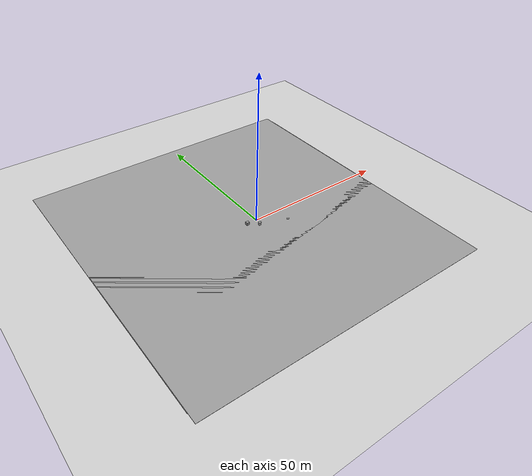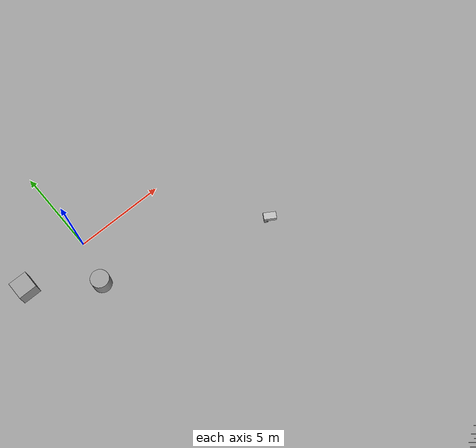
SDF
<sdf version="1.6">
 <world name="default">
  <light name="sun" type="directional">
   <pose>0 0 10 0 -0 0</pose>
   <diffuse>0.8 0.8 0.8 1</diffuse>
   <specular>0.2 0.2 0.2 1</specular>
   <attenuation>
    <range>1000</range>
    <constant>0.9</constant>
    <linear>0.01</linear>
    <quadratic>0.001</quadratic>
   </attenuation>
   <direction>-0.5 0.1 -0.9</direction>
  </light>
  <model name="ground_plane">
   <static>1</static>
   <link name="link">
    <collision name="collision">
     <geometry><plane><normal>0 0 1</normal><size>100 100</size></plane></geometry>
     <surface>
      <contact><collide_bitmask>65535</collide_bitmask></contact>
      <friction><ode><mu>100</mu><mu2>50</mu2></ode></friction>
     </surface>
    </collision>
    <visual name="visual">
     <cast_shadows>0</cast_shadows>
     <geometry><plane><normal>0 0 1</normal><size>100 100</size></plane></geometry>
     <material>
      <script><uri>file://media/materials/scripts/gazebo.material</uri><name>Gazebo/Grey</name></script>
     </material>
    </visual>
   </link>
  </model>
  <gravity>0 0 -9.8</gravity>
  <magnetic_field>6e-06 2.3e-05 -4.2e-05</magnetic_field>
  <atmosphere type="adiabatic"/>
  <physics name="default_physics" default="0" type="ode">
   <max_step_size>0.001</max_step_size>
   <real_time_factor>1</real_time_factor>
   <real_time_update_rate>1000</real_time_update_rate>
  </physics>
  <scene><ambient>0.4 0.4 0.4 1</ambient><background>0.7 0.7 0.7 1</background><shadows>1</shadows></scene>
  <audio><device>default</device></audio>
  <spherical_coordinates>
   <surface_model>EARTH_WGS84</surface_model>
   <latitude_deg>0</latitude_deg>
   <longitude_deg>0</longitude_deg>
   <elevation>0</elevation>
   <heading_deg>0</heading_deg>
  </spherical_coordinates>
  <model name="robot">
   <link name="main_body">
    <inertial>
     <mass>13</mass>
     <inertia><ixx>1</ixx><ixy>0</ixy><ixz>0</ixz><iyy>1</iyy><iyz>0</iyz><izz>1</izz></inertia>
    </inertial>
    <collision name="main_body_collision"><geometry><box><size>0.7 0.4 0.25</size></box></geometry></collision>
    <visual name="main_body_visual"><geometry><box><size>0.7 0.4 0.25</size></box></geometry></visual>
   </link>
   <link name="left_front_support">
    <pose>0.3 -0.15 -0.125 0 -0 0</pose>
    <inertial>
     <mass>0.2</mass>
     <inertia><ixx>1</ixx><ixy>0</ixy><ixz>0</ixz><iyy>1</iyy><iyz>0</iyz><izz>1</izz></inertia>
    </inertial>
    <collision name="left_front_support_collision">
     <pose>0 0.025 -0.04 0 -0 0</pose>
     <geometry><box><size>0.05 0.01 0.08</size></box></geometry>
    </collision>
    <visual name="left_front_support_visual">
     <pose>0 0.025 -0.04 0 -0 0</pose>
     <geometry><box><size>0.05 0.01 0.08</size></box></geometry>
    </visual>
   </link>
   <joint name="left_front_base_joint" type="revolute">
    <child>left_front_support</child>
    <parent>main_body</parent>
    <axis>
     <xyz>0 0 1</xyz>
     <limit><lower>-1e+16</lower><upper>1e+16</upper></limit>
     <dynamics><spring_reference>0</spring_reference><spring_stiffness>0</spring_stiffness></dynamics>
     <use_parent_model_frame>1</use_parent_model_frame>
    </axis>
   </joint>
   <link name="left_aux_wheel">
    <pose>0.27 -0.15 -0.185 0 -0 0</pose>
    <inertial>
     <mass>1</mass>
     <inertia><ixx>1</ixx><ixy>0</ixy><ixz>0</ixz><iyy>1</iyy><iyz>0</iyz><izz>1</izz></inertia>
    </inertial>
    <collision name="left_aux_wheel_collision">
     <pose>0 0 0 1.5708 -0 0</pose>
     <geometry><cylinder><length>0.03</length><radius>0.05</radius></cylinder></geometry>
     <surface>
      <contact><ode><kp>1e+07</kp><kd>1</kd></ode></contact>
      <friction><ode><mu>200</mu><mu2>100</mu2></ode></friction>
     </surface>
    </collision>
    <visual name="left_aux_wheel_visual">
     <pose>0 0 0 1.5708 -0 0</pose>
     <geometry><cylinder><length>0.03</length><radius>0.05</radius></cylinder></geometry>
     <material>
      <script><name>Gazebo/Grey</name><uri>file://media/materials/scripts/gazebo.material</uri></script>
     </material>
    </visual>
   </link>
   <joint name="left_aux_wheel_joint" type="revolute">
    <child>left_aux_wheel</child>
    <parent>left_front_support</parent>
    <axis>
     <xyz>0 1 0</xyz>
     <limit><lower>-1e+16</lower><upper>1e+16</upper></limit>
     <dynamics><spring_reference>0</spring_reference><spring_stiffness>0</spring_stiffness></dynamics>
     <use_parent_model_frame>1</use_parent_model_frame>
    </axis>
   </joint>
   <link name="left_traction_wheel">
    <pose>-0.233333 -0.21 -0.125 0 -0 0</pose>
    <inertial>
     <mass>1</mass>
     <inertia><ixx>1</ixx><ixy>0</ixy><ixz>0</ixz><iyy>1</iyy><iyz>0</iyz><izz>1</izz></inertia>
    </inertial>
    <collision name="left_traction_wheel_collision">
     <pose>0 -0.025 0 1.5708 -0 0</pose>
     <geometry><cylinder><length>0.05</length><radius>0.11</radius></cylinder></geometry>
     <surface>
      <contact><ode><kp>1e+07</kp><kd>1</kd></ode></contact>
      <friction><ode><mu>200</mu><mu2>100</mu2></ode></friction>
     </surface>
    </collision>
    <visual name="left_traction_wheel_visual">
     <pose>0 -0.025 0 1.5708 -0 0</pose>
     <geometry><cylinder><length>0.05</length><radius>0.11</radius></cylinder></geometry>
     <material>
      <script><name>Gazebo/Grey</name><uri>file://media/materials/scripts/gazebo.material</uri></script>
     </material>
    </visual>
   </link>
   <joint name="left_traction_wheel_joint" type="revolute">
    <child>left_traction_wheel</child>
    <parent>main_body</parent>
    <axis>
     <xyz>0 1 0</xyz>
     <limit><lower>-1e+16</lower><upper>1e+16</upper></limit>
     <dynamics><spring_reference>0</spring_reference><spring_stiffness>0</spring_stiffness></dynamics>
     <use_parent_model_frame>1</use_parent_model_frame>
    </axis>
   </joint>
   <link name="right_front_support">
    <pose>0.3 0.15 -0.125 0 -0 0</pose>
    <inertial>
     <mass>0.2</mass>
     <inertia><ixx>1</ixx><ixy>0</ixy><ixz>0</ixz><iyy>1</iyy><iyz>0</iyz><izz>1</izz></inertia>
    </inertial>
    <collision name="right_front_support_collision">
     <pose>0 -0.025 -0.04 0 -0 0</pose>
     <geometry><box><size>0.05 0.01 0.08</size></box></geometry>
    </collision>
    <visual name="right_front_support_visual">
     <pose>0 -0.025 -0.04 0 -0 0</pose>
     <geometry><box><size>0.05 0.01 0.08</size></box></geometry>
    </visual>
   </link>
   <joint name="right_front_base_joint" type="revolute">
    <child>right_front_support</child>
    <parent>main_body</parent>
    <axis>
     <xyz>0 0 1</xyz>
     <limit><lower>-1e+16</lower><upper>1e+16</upper></limit>
     <dynamics><spring_reference>0</spring_reference><spring_stiffness>0</spring_stiffness></dynamics>
     <use_parent_model_frame>1</use_parent_model_frame>
    </axis>
   </joint>
   <link name="right_aux_wheel">
    <pose>0.27 0.15 -0.185 0 -0 0</pose>
    <inertial>
     <mass>1</mass>
     <inertia><ixx>1</ixx><ixy>0</ixy><ixz>0</ixz><iyy>1</iyy><iyz>0</iyz><izz>1</izz></inertia>
    </inertial>
    <collision name="right_aux_wheel_collision">
     <pose>0 0 0 1.5708 -0 0</pose>
     <geometry><cylinder><length>0.03</length><radius>0.05</radius></cylinder></geometry>
     <surface>
      <contact><ode><kp>1e+07</kp><kd>1</kd></ode></contact>
      <friction><ode><mu>200</mu><mu2>100</mu2></ode></friction>
     </surface>
    </collision>
    <visual name="right_aux_wheel_visual">
     <pose>0 0 0 1.5708 -0 0</pose>
     <geometry><cylinder><length>0.03</length><radius>0.05</radius></cylinder></geometry>
     <material>
      <script><name>Gazebo/Grey</name><uri>file://media/materials/scripts/gazebo.material</uri></script>
     </material>
    </visual>
   </link>
   <joint name="right_aux_wheel_joint" type="revolute">
    <child>right_aux_wheel</child>
    <parent>right_front_support</parent>
    <axis>
     <xyz>0 1 0</xyz>
     <limit><lower>-1e+16</lower><upper>1e+16</upper></limit>
     <dynamics><spring_reference>0</spring_reference><spring_stiffness>0</spring_stiffness></dynamics>
     <use_parent_model_frame>1</use_parent_model_frame>
    </axis>
   </joint>
   <link name="right_traction_wheel">
    <pose>-0.233333 0.21 -0.125 0 -0 0</pose>
    <inertial>
     <mass>1</mass>
     <inertia><ixx>1</ixx><ixy>0</ixy><ixz>0</ixz><iyy>1</iyy><iyz>0</iyz><izz>1</izz></inertia>
    </inertial>
    <collision name="right_traction_wheel_collision">
     <pose>0 0.025 0 1.5708 -0 0</pose>
     <geometry><cylinder><length>0.05</length><radius>0.11</radius></cylinder></geometry>
     <surface>
      <contact><ode><kp>1e+07</kp><kd>1</kd></ode></contact>
      <friction><ode><mu>200</mu><mu2>100</mu2></ode></friction>
     </surface>
    </collision>
    <visual name="right_traction_wheel_visual">
     <pose>0 0.025 0 1.5708 -0 0</pose>
     <geometry><cylinder><length>0.05</length><radius>0.11</radius></cylinder></geometry>
     <material>
      <script><name>Gazebo/Grey</name><uri>file://media/materials/scripts/gazebo.material</uri></script>
     </material>
    </visual>
   </link>
   <joint name="right_traction_wheel_joint" type="revolute">
    <child>right_traction_wheel</child>
    <parent>main_body</parent>
    <axis>
     <xyz>0 1 0</xyz>
     <limit><lower>-1e+16</lower><upper>1e+16</upper></limit>
     <dynamics><spring_reference>0</spring_reference><spring_stiffness>0</spring_stiffness></dynamics>
     <use_parent_model_frame>1</use_parent_model_frame>
    </axis>
   </joint>
   <static>0</static>
   <plugin name="gazebo_ros_control" filename="libgazebo_ros_control.so">
    <robotNamespace>/</robotNamespace>
   </plugin>
   <pose>8.59471 -5.44041 0.234999 -1e-06 7e-06 -0.579653</pose>
  </model>
  <model name="ground_plane_0">
   <static>1</static>
   <link name="link">
    <collision name="collision">
     <geometry><plane><normal>0 0 1</normal><size>100 100</size></plane></geometry>
     <surface>
      <contact><collide_bitmask>65535</collide_bitmask></contact>
      <friction><ode><mu>100</mu><mu2>50</mu2></ode></friction>
     </surface>
    </collision>
    <visual name="visual">
     <cast_shadows>0</cast_shadows>
     <geometry><plane><normal>0 0 1</normal><size>100 100</size></plane></geometry>
     <material>
      <script><uri>file://media/materials/scripts/gazebo.material</uri><name>Gazebo/Grey</name></script>
     </material>
    </visual>
   </link>
   <pose>-4.53723 -0.413869 0 0 -0 0</pose>
  </model>
  <model name="unit_box">
   <pose>-3.69784 -0.164179 0.500002 -4e-06 0 0</pose>
   <link name="link">
    <inertial>
     <mass>1</mass>
     <inertia>
      <ixx>0.166667</ixx>
      <ixy>0</ixy>
      <ixz>0</ixz>
      <iyy>0.166667</iyy>
      <iyz>0</iyz>
      <izz>0.166667</izz>
     </inertia>
    </inertial>
    <collision name="collision"><geometry><box><size>1 1 1</size></box></geometry></collision>
    <visual name="visual">
     <geometry><box><size>1 1 1</size></box></geometry>
     <material>
      <script><name>Gazebo/Grey</name><uri>file://media/materials/scripts/gazebo.material</uri></script>
     </material>
    </visual>
   </link>
  </model>
  <model name="unit_cylinder">
   <pose>-0.519855 -2.47141 0.499997 -4e-06 -2e-06 -0</pose>
   <link name="link">
    <inertial>
     <mass>1</mass>
     <inertia><ixx>0.145833</ixx><ixy>0</ixy><ixz>0</ixz><iyy>0.145833</iyy><iyz>0</iyz><izz>0.125</izz></inertia>
    </inertial>
    <collision name="collision">
     <geometry><cylinder><radius>0.5</radius><length>1</length></cylinder></geometry>
    </collision>
    <visual name="visual">
     <geometry><cylinder><radius>0.5</radius><length>1</length></cylinder></geometry>
     <material>
      <script><name>Gazebo/Grey</name><uri>file://media/materials/scripts/gazebo.material</uri></script>
     </material>
    </visual>
   </link>
  </model>
  <model name="ground_plane_1">
   <static>1</static>
   <link name="link">
    <collision name="collision">
     <geometry><plane><normal>0 0 1</normal><size>100 100</size></plane></geometry>
     <surface>
      <contact><collide_bitmask>65535</collide_bitmask></contact>
      <friction><ode><mu>100</mu><mu2>50</mu2></ode></friction>
     </surface>
    </collision>
    <visual name="visual">
     <cast_shadows>0</cast_shadows>
     <geometry><plane><normal>0 0 1</normal><size>100 100</size></plane></geometry>
     <material>
      <script><uri>file://media/materials/scripts/gazebo.material</uri><name>Gazebo/Grey</name></script>
     </material>
    </visual>
   </link>
   <pose>-4.67467 2.86783 0 0 -0 0</pose>
  </model>
 </world>
</sdf>
